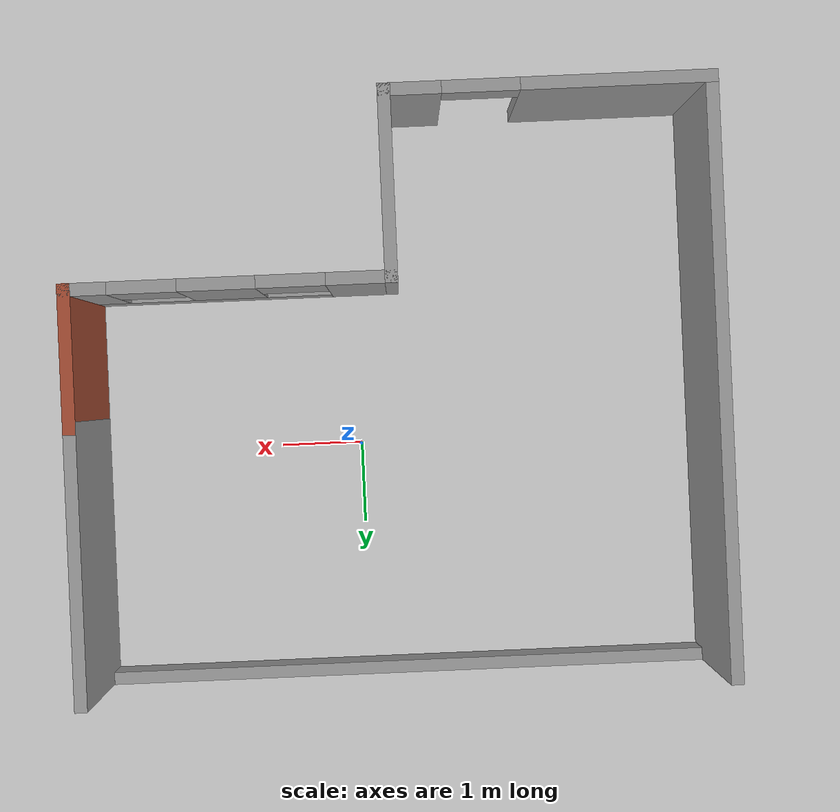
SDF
<sdf version="1.7">
 <world name="default">
  <light name="sun" type="directional">
   <pose>0 0 10 0 -0 0</pose>
   <diffuse>0.8 0.8 0.8 1</diffuse>
   <specular>0.2 0.2 0.2 1</specular>
   <attenuation>
    <range>1000</range>
    <constant>0.9</constant>
    <linear>0.01</linear>
    <quadratic>0.001</quadratic>
   </attenuation>
   <direction>-0.5 0.1 -0.9</direction>
   <spot><inner_angle>0</inner_angle><outer_angle>0</outer_angle><falloff>0</falloff></spot>
  </light>
  <model name="ground_plane">
   <static>1</static>
   <link name="link">
    <collision name="collision">
     <geometry><plane><normal>0 0 1</normal><size>100 100</size></plane></geometry>
     <surface>
      <contact><collide_bitmask>65535</collide_bitmask></contact>
      <friction><ode><mu>100</mu><mu2>50</mu2></ode></friction>
     </surface>
    </collision>
    <visual name="visual">
     <cast_shadows>0</cast_shadows>
     <geometry><plane><normal>0 0 1</normal><size>100 100</size></plane></geometry>
     <material>
      <script><uri>file://media/materials/scripts/gazebo.material</uri><name>Gazebo/Grey</name></script>
     </material>
    </visual>
   </link>
  </model>
  <gravity>0 0 -9.8</gravity>
  <magnetic_field>6e-06 2.3e-05 -4.2e-05</magnetic_field>
  <atmosphere type="adiabatic"/>
  <physics type="ode">
   <max_step_size>0.001</max_step_size>
   <real_time_factor>1</real_time_factor>
   <real_time_update_rate>1000</real_time_update_rate>
  </physics>
  <scene><ambient>0.4 0.4 0.4 1</ambient><background>0.7 0.7 0.7 1</background><shadows>1</shadows></scene>
  <audio><device>default</device></audio>
  <spherical_coordinates>
   <surface_model>EARTH_WGS84</surface_model>
   <latitude_deg>0</latitude_deg>
   <longitude_deg>0</longitude_deg>
   <elevation>0</elevation>
   <heading_deg>0</heading_deg>
  </spherical_coordinates>
  <model name="first_test_house">
   <pose>-0.464943 0.654892 0 0 -0 0</pose>
   <link name="Wall_63">
    <pose>-1.8675 -4.71596 0 0 -0 0</pose>
    <visual name="Wall_63_Visual_0">
     <pose>-0.817346 0 1.25 0 -0 0</pose>
     <geometry><box><size>2.25331 0.15 2.5</size></box></geometry>
     <material>
      <script><uri>file://media/materials/scripts/gazebo.material</uri><name>Gazebo/Grey</name></script>
      <ambient>1 1 1 1</ambient>
     </material>
     <meta><layer>0</layer></meta>
    </visual>
    <collision name="Wall_63_Collision_0">
     <geometry><box><size>2.25331 0.15 2.5</size></box></geometry>
     <pose>-0.817346 0 1.25 0 -0 0</pose>
    </collision>
    <visual name="Wall_63_Visual_1">
     <pose>1.57665 0 1.25 0 -0 0</pose>
     <geometry><box><size>0.734691 0.15 2.5</size></box></geometry>
     <material>
      <script><uri>file://media/materials/scripts/gazebo.material</uri><name>Gazebo/Grey</name></script>
      <ambient>1 1 1 1</ambient>
     </material>
     <meta><layer>0</layer></meta>
    </visual>
    <collision name="Wall_63_Collision_1">
     <geometry><box><size>0.734691 0.15 2.5</size></box></geometry>
     <pose>1.57665 0 1.25 0 -0 0</pose>
    </collision>
    <visual name="Wall_63_Visual_2">
     <pose>0.759309 0 2.25 0 -0 0</pose>
     <geometry><box><size>0.9 0.15 0.5</size></box></geometry>
     <material>
      <script><uri>file://media/materials/scripts/gazebo.material</uri><name>Gazebo/Grey</name></script>
      <ambient>1 1 1 1</ambient>
     </material>
     <meta><layer>0</layer></meta>
    </visual>
    <collision name="Wall_63_Collision_2">
     <geometry><box><size>0.9 0.15 0.5</size></box></geometry>
     <pose>0.759309 0 2.25 0 -0 0</pose>
    </collision>
   </link>
   <link name="Wall_64">
    <collision name="Wall_64_Collision">
     <geometry><box><size>2.27316 0.15 2.5</size></box></geometry>
     <pose>0 0 1.25 0 -0 0</pose>
    </collision>
    <visual name="Wall_64_Visual">
     <pose>0 0 1.25 0 -0 0</pose>
     <geometry><box><size>2.27316 0.15 2.5</size></box></geometry>
     <material>
      <script><uri>file://media/materials/scripts/gazebo.material</uri><name>Gazebo/Grey</name></script>
      <ambient>1 1 1 1</ambient>
     </material>
     <meta><layer>0</layer></meta>
    </visual>
    <pose>0.0015 -3.65446 0 0 -0 1.5708</pose>
   </link>
   <link name="Wall_65">
    <pose>1.869 -2.59296 0 0 -0 0</pose>
    <visual name="Wall_65_Visual_0">
     <pose>-1.52898 0 1.25 0 -0 0</pose>
     <geometry><box><size>0.826847 0.15 2.5</size></box></geometry>
     <material>
      <script><uri>file://media/materials/scripts/gazebo.material</uri><name>Gazebo/Grey</name></script>
      <ambient>1 1 1 1</ambient>
     </material>
     <meta><layer>0</layer></meta>
    </visual>
    <collision name="Wall_65_Collision_0">
     <geometry><box><size>0.826847 0.15 2.5</size></box></geometry>
     <pose>-1.52898 0 1.25 0 -0 0</pose>
    </collision>
    <visual name="Wall_65_Visual_1">
     <pose>0.413423 0 0.25 0 -0 0</pose>
     <geometry><box><size>3.05795 0.15 0.5</size></box></geometry>
     <material>
      <script><uri>file://media/materials/scripts/gazebo.material</uri><name>Gazebo/Grey</name></script>
      <ambient>1 1 1 1</ambient>
     </material>
     <meta><layer>0</layer></meta>
    </visual>
    <collision name="Wall_65_Collision_1">
     <geometry><box><size>3.05795 0.15 0.5</size></box></geometry>
     <pose>0.413423 0 0.25 0 -0 0</pose>
    </collision>
    <visual name="Wall_65_Visual_2">
     <pose>0.132774 0 1.5 0 -0 0</pose>
     <geometry><box><size>0.896653 0.15 2</size></box></geometry>
     <material>
      <script><uri>file://media/materials/scripts/gazebo.material</uri><name>Gazebo/Grey</name></script>
      <ambient>1 1 1 1</ambient>
     </material>
     <meta><layer>0</layer></meta>
    </visual>
    <collision name="Wall_65_Collision_2">
     <geometry><box><size>0.896653 0.15 2</size></box></geometry>
     <pose>0.132774 0 1.5 0 -0 0</pose>
    </collision>
    <visual name="Wall_65_Visual_3">
     <pose>1.66175 0 1.5 0 -0 0</pose>
     <geometry><box><size>0.561298 0.15 2</size></box></geometry>
     <material>
      <script><uri>file://media/materials/scripts/gazebo.material</uri><name>Gazebo/Grey</name></script>
      <ambient>1 1 1 1</ambient>
     </material>
     <meta><layer>0</layer></meta>
    </visual>
    <collision name="Wall_65_Collision_3">
     <geometry><box><size>0.561298 0.15 2</size></box></geometry>
     <pose>1.66175 0 1.5 0 -0 0</pose>
    </collision>
    <visual name="Wall_65_Visual_4">
     <pose>-0.715552 0 1.9 0 -0 0</pose>
     <geometry><box><size>0.8 0.15 1.2</size></box></geometry>
     <material>
      <script><uri>file://media/materials/scripts/gazebo.material</uri><name>Gazebo/Grey</name></script>
      <ambient>1 1 1 1</ambient>
     </material>
     <meta><layer>0</layer></meta>
    </visual>
    <collision name="Wall_65_Collision_4">
     <geometry><box><size>0.8 0.15 1.2</size></box></geometry>
     <pose>-0.715552 0 1.9 0 -0 0</pose>
    </collision>
    <visual name="Wall_65_Visual_5">
     <pose>0.981101 0 1.9 0 -0 0</pose>
     <geometry><box><size>0.8 0.15 1.2</size></box></geometry>
     <material>
      <script><uri>file://media/materials/scripts/gazebo.material</uri><name>Gazebo/Grey</name></script>
      <ambient>1 1 1 1</ambient>
     </material>
     <meta><layer>0</layer></meta>
    </visual>
    <collision name="Wall_65_Collision_5">
     <geometry><box><size>0.8 0.15 1.2</size></box></geometry>
     <pose>0.981101 0 1.9 0 -0 0</pose>
    </collision>
   </link>
   <link name="Wall_66">
    <collision name="Wall_66_Collision">
     <geometry><box><size>1.727 0.15 2.5</size></box></geometry>
     <pose>0 0 1.25 0 -0 0</pose>
    </collision>
    <visual name="Wall_66_Visual">
     <pose>0 0 1.25 0 -0 0</pose>
     <geometry><box><size>1.727 0.15 2.5</size></box></geometry>
     <material>
      <script><uri>file://media/materials/scripts/gazebo.material</uri><name>Gazebo/Bricks</name></script>
      <ambient>1 1 1 1</ambient>
     </material>
     <meta><layer>0</layer></meta>
    </visual>
    <pose>3.7365 -1.80446 0 0 -0 1.5708</pose>
   </link>
   <link name="Wall_72">
    <collision name="Wall_72_Collision">
     <geometry><box><size>7.00718 0.15 2.5</size></box></geometry>
     <pose>0 0 1.25 0 -0 0</pose>
    </collision>
    <visual name="Wall_72_Visual">
     <pose>0 0 1.25 0 -0 0</pose>
     <geometry><box><size>7.00718 0.15 2.5</size></box></geometry>
     <material>
      <script><uri>file://media/materials/scripts/gazebo.material</uri><name>Gazebo/Grey</name></script>
      <ambient>1 1 1 1</ambient>
     </material>
     <meta><layer>0</layer></meta>
    </visual>
    <pose>-3.7365 -1.28746 0 0 -0 1.5708</pose>
   </link>
   <link name="Wall_76">
    <collision name="Wall_76_Collision">
     <geometry><box><size>7.623 0.15 0.5</size></box></geometry>
     <pose>0 0 0.25 0 -0 0</pose>
    </collision>
    <visual name="Wall_76_Visual">
     <pose>0 0 0.25 0 -0 0</pose>
     <geometry><box><size>7.623 0.15 0.5</size></box></geometry>
     <material>
      <script><uri>file://media/materials/scripts/gazebo.material</uri><name>Gazebo/Grey</name></script>
      <ambient>1 1 1 1</ambient>
     </material>
     <meta><layer>0</layer></meta>
    </visual>
    <pose>-0 2.14104 0 0 -0 0</pose>
   </link>
   <link name="Wall_78">
    <collision name="Wall_78_Collision">
     <geometry><box><size>3.30706 0.15 2.5</size></box></geometry>
     <pose>0 0 1.25 0 -0 0</pose>
    </collision>
    <visual name="Wall_78_Visual">
     <pose>0 0 1.25 0 -0 0</pose>
     <geometry><box><size>3.30706 0.15 2.5</size></box></geometry>
     <material>
      <script><uri>file://media/materials/scripts/gazebo.material</uri><name>Gazebo/Grey</name></script>
      <ambient>1 1 1 1</ambient>
     </material>
     <meta><layer>0</layer></meta>
    </visual>
    <pose>3.7365 0.562544 0 0 -0 -1.5708</pose>
   </link>
   <static>1</static>
  </model>
 </world>
</sdf>
